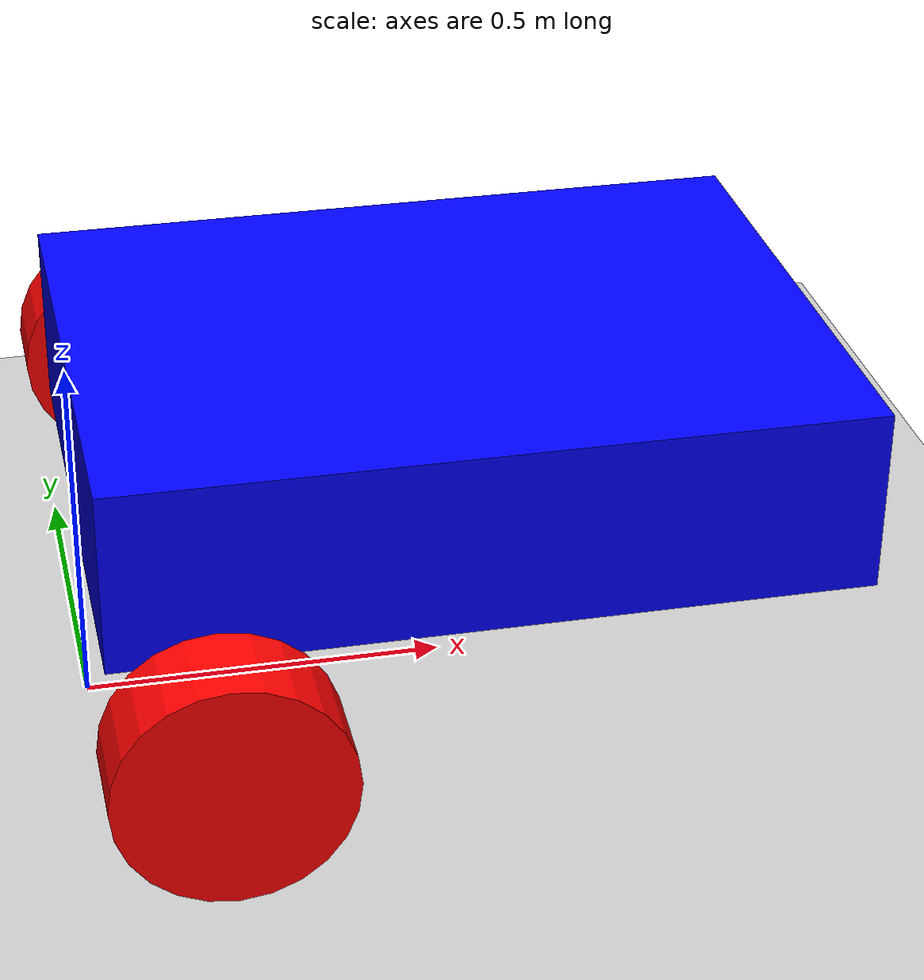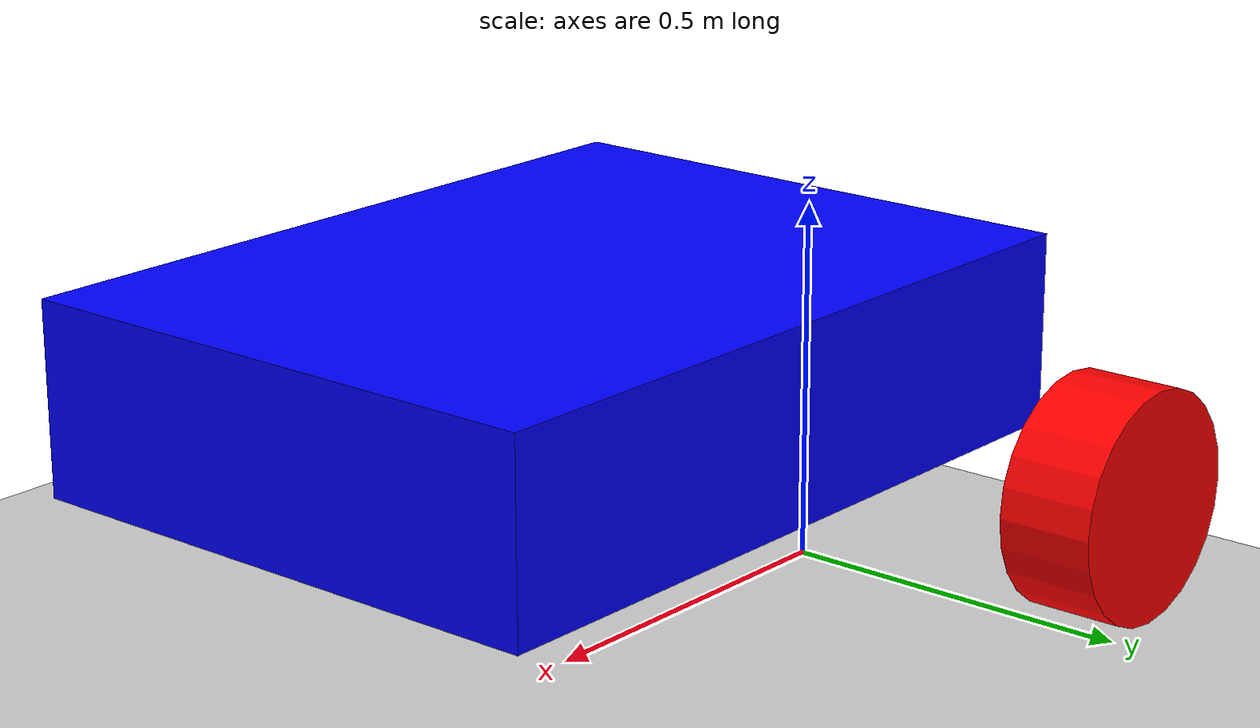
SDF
<?xml version="1.0" ?>
<sdf version="1.10">

    <world name="car_world">

        <!-- Moving Forward -->
        <plugin filename="gz-sim-triggered-publisher-system"
                name="gz::sim::systems::TriggeredPublisher">
            <input type="gz.msgs.Int32" topic="/keyboard/keypress">
                <match field="data">87</match>
            </input>
            <output type="gz.msgs.Twist" topic="/cmd_vel">
                linear: {x: 0.5}, angular: {z: 0.0}
            </output>
        </plugin>

        <!-- Moving Backward -->
        <plugin filename="gz-sim-triggered-publisher-system"
                name="gz::sim::systems::TriggeredPublisher">
            <input type="gz.msgs.Int32" topic="/keyboard/keypress">
                <match field="data">83</match>
            </input>
            <output type="gz.msgs.Twist" topic="/cmd_vel">
                linear: {x: -0.5}, angular: {z: 0.0}
            </output>
        </plugin>

        <!-- Moving Right -->
        <plugin filename="gz-sim-triggered-publisher-system"
                name="gz::sim::systems::TriggeredPublisher">
            <input type="gz.msgs.Int32" topic="/keyboard/keypress">
                <match field="data">68</match>
            </input>
            <output type="gz.msgs.Twist" topic="/cmd_vel">
                linear: {x: 0.5}, angular: {z: 0.5}
            </output>
        </plugin>

        <!-- Moving Left -->
        <plugin filename="gz-sim-triggered-publisher-system"
                name="gz::sim::systems::TriggeredPublisher">
            <input type="gz.msgs.Int32" topic="/keyboard/keypress">
                <match field="data">65</match>
            </input>
            <output type="gz.msgs.Twist" topic="/cmd_vel">
                linear: {x: 0.5}, angular: {z: -0.5}
            </output>
        </plugin>

        <!-- Halt -->
        <plugin filename="gz-sim-triggered-publisher-system"
                name="gz::sim::systems::TriggeredPublisher">
            <input type="gz.msgs.Int32" topic="/keyboard/keypress">
                <match field="data">88</match>
            </input>
            <output type="gz.msgs.Twist" topic="/cmd_vel">
                linear: {x: 0.0}, angular: {z: 0.0}
            </output>
        </plugin>

        <physics name="1ms" type="ignored">
            <max_step_size>0.001</max_step_size>
            <real_time_factor>1.0</real_time_factor>
        </physics>

        <plugin filename="gz-sim-physics-system" name="gz::sim::systems::Physics"/>
        <plugin filename="gz-sim-user-commands-system" name="gz::sim::systems::UserCommands"/>
        <plugin filename="gz-sim-scene-broadcaster-system" name="gz::sim::systems::SceneBroadcaster"/>

        <light type="directional" name="sun">
            <cast_shadows>true</cast_shadows>
            <pose>0 0 10 0 0 0</pose>
            <diffuse>0.8 0.8 0.8 1</diffuse>
            <specular>0.2 0.2 0.2 1</specular>
            <attenuation>
                <range>1000</range>
                <constant>0.9</constant>
                <linear>0.01</linear>
                <quadratic>0.001</quadratic>
            </attenuation>
            <direction>-0.5 0.1 -0.9</direction>
        </light>

        <model name="ground_plane">
            <static>true</static>
            <link name="link">
                <collision name="collision">
                    <geometry>
                        <plane>
                            <normal>0 0 1</normal>
                        </plane>
                    </geometry>
                </collision>
                <visual name="visual">
                    <geometry>
                        <plane>
                            <normal>0 0 1</normal>
                            <size>100 100</size>
                        </plane>
                    </geometry>
                    <material>
                        <ambient>0.8 0.8 0.8 1</ambient>
                        <diffuse>0.8 0.8 0.8 1</diffuse>
                        <specular>0.8 0.8 0.8 1</specular>
                    </material>
                </visual>
            </link>
        </model>

        <model name="vehicle_blue" canonical_link="chassis">

            <plugin filename="gz-sim-diff-drive-system"
                    name="gz::sim::systems::DiffDrive">
                <left_joint>rear_left_wheel_joint</left_joint>
                <right_joint>rear_right_wheel_joint</right_joint>
                <wheel_separation>1.125</wheel_separation>
                <wheel_radius>0.15</wheel_radius>
                <odom_publish_frequency>1</odom_publish_frequency>
                <topic>cmd_vel</topic>
            </plugin>

            <pose relative_to="world">0 0 0 0 0 0</pose>

            <link name="chassis">
                <pose relative_to="__model__">0.5 0 0.4 0 0 0</pose>
                <inertial>
                    <mass>1.14395</mass>
                    <inertia>
                        <ixx>0.095329</ixx>
                        <ixy>0</ixy>
                        <ixz>0</ixz>
                        <iyy>0.381317</iyy>
                        <iyz>0</iyz>
                        <izz>0.476646</izz>
                    </inertia>
                </inertial>
                <visual name="visual">
                    <geometry>
                        <box>
                            <size>1.0 0.75 0.25</size>
                        </box>
                    </geometry>
                    <material>
                        <ambient>0.0 0.0 1.0 1</ambient>
                        <diffuse>0.0 0.0 1.0 1</diffuse>
                        <specular>0.0 0.0 1.0 1</specular>
                    </material>
                </visual>
                <collision name="collision">
                    <geometry>
                        <box>
                            <size>1.0 0.75 0.25</size>
                        </box>
                    </geometry>
                </collision>
            </link>

            <link name="wheel_rear_right">
                <pose relative_to="chassis">-0.375 +0.5625 -0.15 -1.5707 0 0</pose> <!--angles are in radian-->
                <inertial>
                    <mass>1</mass>
                    <inertia>
                        <ixx>0.043333</ixx>
                        <ixy>0</ixy>
                        <ixz>0</ixz>
                        <iyy>0.043333</iyy>
                        <iyz>0</iyz>
                        <izz>0.08</izz>
                    </inertia>
                </inertial>
                <visual name="visual">
                    <geometry>
                        <cylinder>
                            <radius>0.15</radius>
                            <length>0.125</length>
                        </cylinder>
                    </geometry>
                    <material>
                        <ambient>1.0 0.0 0.0 1</ambient>
                        <diffuse>1.0 0.0 0.0 1</diffuse>
                        <specular>1.0 0.0 0.0 1</specular>
                    </material>
                </visual>
                <collision name="collision">
                    <geometry>
                        <cylinder>
                            <radius>0.15</radius>
                            <length>0.125</length>
                        </cylinder>
                    </geometry>
                </collision>
            </link>

            <link name="wheel_rear_left">
                <pose relative_to="chassis">-0.375 -0.5625 -0.15 -1.5707 0 0</pose> <!--angles are in radian-->
                <inertial>
                    <mass>1</mass>
                    <inertia>
                        <ixx>0.043333</ixx>
                        <ixy>0</ixy>
                        <ixz>0</ixz>
                        <iyy>0.043333</iyy>
                        <iyz>0</iyz>
                        <izz>0.08</izz>
                    </inertia>
                </inertial>
                <visual name="visual">
                    <geometry>
                        <cylinder>
                            <radius>0.15</radius>
                            <length>0.125</length>
                        </cylinder>
                    </geometry>
                    <material>
                        <ambient>1.0 0.0 0.0 1</ambient>
                        <diffuse>1.0 0.0 0.0 1</diffuse>
                        <specular>1.0 0.0 0.0 1</specular>
                    </material>
                </visual>
                <collision name="collision">
                    <geometry>
                        <cylinder>
                            <radius>0.15</radius>
                            <length>0.125</length>
                        </cylinder>
                    </geometry>
                </collision>
            </link>

            <frame name="caster_left_frame" attached_to="chassis">
                <pose>0.375 -0.5625 -0.15 0 0 0</pose>
            </frame>

            <frame name="caster_right_frame" attached_to="chassis">
                <pose>0.375 0.5625 -0.15 0 0 0</pose>
            </frame>

            <!-- caster wheel -->
            <link name="caster_left">
                <pose relative_to="caster_left_frame"/>
                <inertial>
                    <mass>1</mass>
                    <inertia>
                        <ixx>0.016</ixx>
                        <ixy>0</ixy>
                        <ixz>0</ixz>
                        <iyy>0.016</iyy>
                        <iyz>0</iyz>
                        <izz>0.016</izz>
                    </inertia>
                </inertial>
                <collision name="collision">
                    <geometry>
                        <sphere>
                            <radius>0.15</radius>
                        </sphere>
                    </geometry>
                </collision>
            </link>

            <link name="caster_right">
                <pose relative_to="caster_right_frame"/>
                <inertial>
                    <mass>1</mass>
                    <inertia>
                        <ixx>0.016</ixx>
                        <ixy>0</ixy>
                        <ixz>0</ixz>
                        <iyy>0.016</iyy>
                        <iyz>0</iyz>
                        <izz>0.016</izz>
                    </inertia>
                </inertial>
                <collision name="collision">
                    <geometry>
                        <sphere>
                            <radius>0.15</radius>
                        </sphere>
                    </geometry>
                </collision>
            </link>

            <joint name="caster_left_joint" type="ball">
                <parent>chassis</parent>
                <child>caster_left</child>
            </joint>

            <joint name="caster_right_joint" type="ball">
                <parent>chassis</parent>
                <child>caster_right</child>
            </joint>

            <joint name="rear_right_wheel_joint" type="revolute">
                <pose relative_to="wheel_rear_right"/>
                <parent>chassis</parent>
                <child>wheel_rear_right</child>
                <axis>
                    <xyz expressed_in="__model__">0 1 0</xyz>
                    <limit>
                        <lower>-1.79769e+308</lower>    <!--negative infinity-->
                        <upper>1.79769e+308</upper>     <!--positive infinity-->
                    </limit>
                </axis>
            </joint>

            <joint name="rear_left_wheel_joint" type="revolute">
                <pose relative_to="wheel_rear_left"/>
                <parent>chassis</parent>
                <child>wheel_rear_left</child>
                <axis>
                    <xyz expressed_in="__model__">0 1 0</xyz>
                    <limit>
                        <lower>-1.79769e+308</lower>    <!--negative infinity-->
                        <upper>1.79769e+308</upper>     <!--positive infinity-->
                    </limit>
                </axis>
            </joint>

        </model>
    </world>
</sdf>
